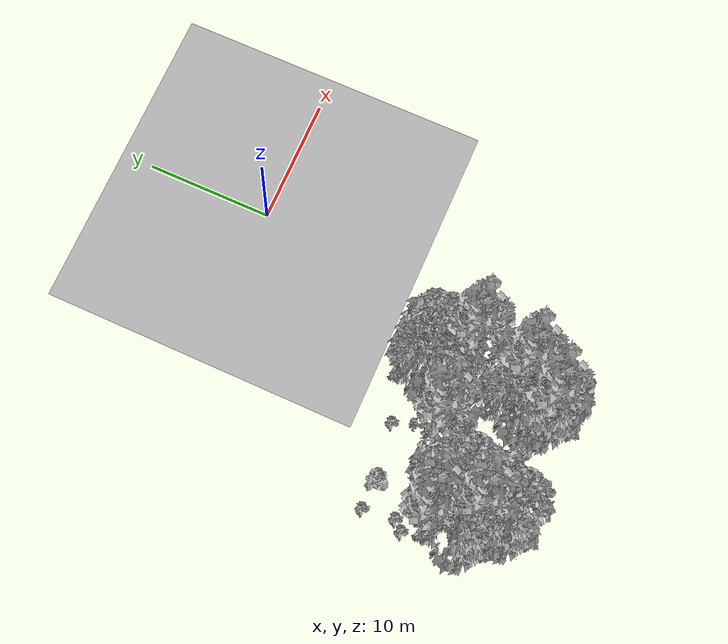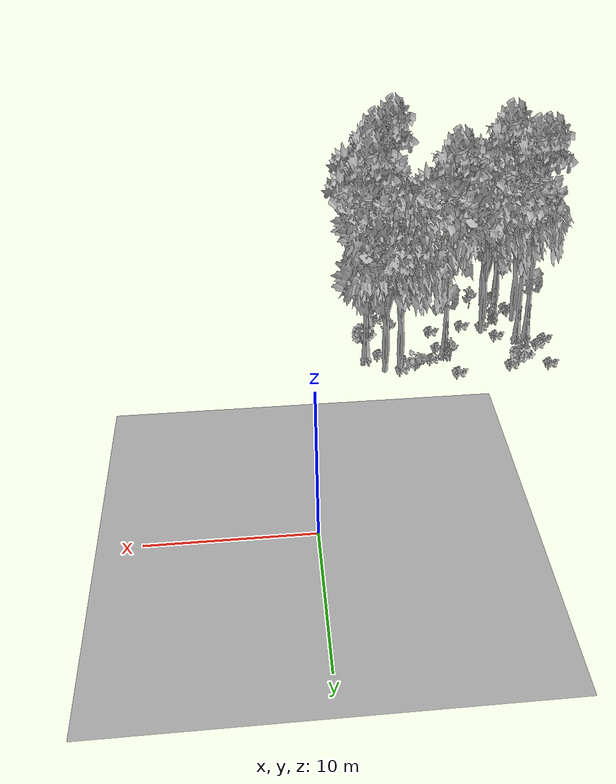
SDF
<sdf version="1.7">
 <world name="default">
  <model name="ground_plane">
   <static>1</static>
   <link name="link">
    <collision name="collision">
     <pose>-50 0 0 0 -0 0</pose>
     <geometry><plane><normal>0 0 1</normal><size>80 80</size></plane></geometry>
     <surface><contact><ode><min_depth>0.01</min_depth><max_vel>0</max_vel></ode></contact></surface>
    </collision>
    <visual name="grass">
     <cast_shadows>0</cast_shadows>
     <geometry>
      <mesh>
       <scale>0.46714285714285714 0.46714285714285714 0.1</scale>
       <uri>file://grass_plane/meshes/grass_plane.dae</uri>
      </mesh>
     </geometry>
    </visual>
   </link>
  </model>
  <model name="Tree 80">
   <static>1</static>
   <pose>-13.733407113999728 -20.463166102159917 0 1.57079 -0 0</pose>
   <link name="link">
    <collision name="collision">
     <geometry><mesh><scale>3.5 5 3.5</scale><uri>model://tree_2/meshes/tree_2.obj</uri></mesh></geometry>
    </collision>
    <visual name="visual">
     <geometry><mesh><scale>3.5 5 3.5</scale><uri>model://tree_2/meshes/tree_2.obj</uri></mesh></geometry>
    </visual>
   </link>
  </model>
  <model name="Tree 127">
   <static>1</static>
   <pose>-4.68467193456803 -18.030052959936597 0 1.57079 -0 0</pose>
   <link name="link">
    <collision name="collision">
     <geometry><mesh><scale>3.5 5 3.5</scale><uri>model://tree_9/meshes/tree_9.obj</uri></mesh></geometry>
    </collision>
    <visual name="visual">
     <geometry><mesh><scale>3.5 5 3.5</scale><uri>model://tree_9/meshes/tree_9.obj</uri></mesh></geometry>
    </visual>
   </link>
  </model>
  <model name="Tree 202">
   <static>1</static>
   <pose>-5.9260006562697995 -16.08295300320868 0 1.57079 -0 0</pose>
   <link name="link">
    <collision name="collision">
     <geometry><mesh><scale>3.5 5 3.5</scale><uri>model://tree_2/meshes/tree_2.obj</uri></mesh></geometry>
    </collision>
    <visual name="visual">
     <geometry><mesh><scale>3.5 5 3.5</scale><uri>model://tree_2/meshes/tree_2.obj</uri></mesh></geometry>
    </visual>
   </link>
  </model>
  <model name="Tree 301">
   <static>1</static>
   <pose>-6.976071896903822 -16.067900413745512 0 1.57079 -0 0</pose>
   <link name="link">
    <collision name="collision">
     <geometry><mesh><scale>3.5 5 3.5</scale><uri>model://tree_2/meshes/tree_2.obj</uri></mesh></geometry>
    </collision>
    <visual name="visual">
     <geometry><mesh><scale>3.5 5 3.5</scale><uri>model://tree_2/meshes/tree_2.obj</uri></mesh></geometry>
    </visual>
   </link>
  </model>
  <model name="Tree 302">
   <static>1</static>
   <pose>-15.026390082292696 -22.64314316348819 0 1.57079 -0 0</pose>
   <link name="link">
    <collision name="collision">
     <geometry><mesh><scale>3.5 5 3.5</scale><uri>model://tree_9/meshes/tree_9.obj</uri></mesh></geometry>
    </collision>
    <visual name="visual">
     <geometry><mesh><scale>3.5 5 3.5</scale><uri>model://tree_9/meshes/tree_9.obj</uri></mesh></geometry>
    </visual>
   </link>
  </model>
  <model name="Tree 306">
   <static>1</static>
   <pose>-15.131793845772428 -22.701720346680617 0 1.57079 -0 0</pose>
   <link name="link">
    <collision name="collision">
     <geometry><mesh><scale>3.5 5 3.5</scale><uri>model://tree_2/meshes/tree_2.obj</uri></mesh></geometry>
    </collision>
    <visual name="visual">
     <geometry><mesh><scale>3.5 5 3.5</scale><uri>model://tree_2/meshes/tree_2.obj</uri></mesh></geometry>
    </visual>
   </link>
  </model>
  <model name="Tree 366">
   <static>1</static>
   <pose>-10.466068834979662 -18.094548248473963 0 1.57079 -0 0</pose>
   <link name="link">
    <collision name="collision">
     <geometry><mesh><scale>3.5 5 3.5</scale><uri>model://tree_9/meshes/tree_9.obj</uri></mesh></geometry>
    </collision>
    <visual name="visual">
     <geometry><mesh><scale>3.5 5 3.5</scale><uri>model://tree_9/meshes/tree_9.obj</uri></mesh></geometry>
    </visual>
   </link>
  </model>
  <model name="Tree 367">
   <static>1</static>
   <pose>-6.5593822232438725 -24.212072718249384 0 1.57079 -0 0</pose>
   <link name="link">
    <collision name="collision">
     <geometry><mesh><scale>3.5 5 3.5</scale><uri>model://tree_2/meshes/tree_2.obj</uri></mesh></geometry>
    </collision>
    <visual name="visual">
     <geometry><mesh><scale>3.5 5 3.5</scale><uri>model://tree_2/meshes/tree_2.obj</uri></mesh></geometry>
    </visual>
   </link>
  </model>
  <model name="Tree 406">
   <static>1</static>
   <pose>-16.192806095188867 -19.68909180509055 0 1.57079 -0 0</pose>
   <link name="link">
    <collision name="collision">
     <geometry><mesh><scale>3.5 5 3.5</scale><uri>model://tree_9/meshes/tree_9.obj</uri></mesh></geometry>
    </collision>
    <visual name="visual">
     <geometry><mesh><scale>3.5 5 3.5</scale><uri>model://tree_9/meshes/tree_9.obj</uri></mesh></geometry>
    </visual>
   </link>
  </model>
  <model name="Tree 416">
   <static>1</static>
   <pose>-6.881785236045282 -22.58698716618821 0 1.57079 -0 0</pose>
   <link name="link">
    <collision name="collision">
     <geometry><mesh><scale>3.5 5 3.5</scale><uri>model://tree_2/meshes/tree_2.obj</uri></mesh></geometry>
    </collision>
    <visual name="visual">
     <geometry><mesh><scale>3.5 5 3.5</scale><uri>model://tree_2/meshes/tree_2.obj</uri></mesh></geometry>
    </visual>
   </link>
  </model>
  <model name="Tree 509">
   <static>1</static>
   <pose>-14.540099592670462 -24.368938266835684 0 1.57079 -0 0</pose>
   <link name="link">
    <collision name="collision">
     <geometry><mesh><scale>3.5 5 3.5</scale><uri>model://tree_2/meshes/tree_2.obj</uri></mesh></geometry>
    </collision>
    <visual name="visual">
     <geometry><mesh><scale>3.5 5 3.5</scale><uri>model://tree_2/meshes/tree_2.obj</uri></mesh></geometry>
    </visual>
   </link>
  </model>
  <model name="Tree 521">
   <static>1</static>
   <pose>-5.320970833933046 -22.073026065958203 0 1.57079 -0 0</pose>
   <link name="link">
    <collision name="collision">
     <geometry><mesh><scale>3.5 5 3.5</scale><uri>model://tree_9/meshes/tree_9.obj</uri></mesh></geometry>
    </collision>
    <visual name="visual">
     <geometry><mesh><scale>3.5 5 3.5</scale><uri>model://tree_9/meshes/tree_9.obj</uri></mesh></geometry>
    </visual>
   </link>
  </model>
  <model name="Tree 548">
   <static>1</static>
   <pose>-16.93138918999369 -19.855117583111543 0 1.57079 -0 0</pose>
   <link name="link">
    <collision name="collision">
     <geometry><mesh><scale>3.5 5 3.5</scale><uri>model://tree_9/meshes/tree_9.obj</uri></mesh></geometry>
    </collision>
    <visual name="visual">
     <geometry><mesh><scale>3.5 5 3.5</scale><uri>model://tree_9/meshes/tree_9.obj</uri></mesh></geometry>
    </visual>
   </link>
  </model>
  <model name="Tree 583">
   <static>1</static>
   <pose>-16.417527314023186 -21.92130678057742 0 1.57079 -0 0</pose>
   <link name="link">
    <collision name="collision">
     <geometry><mesh><scale>3.5 5 3.5</scale><uri>model://tree_2/meshes/tree_2.obj</uri></mesh></geometry>
    </collision>
    <visual name="visual">
     <geometry><mesh><scale>3.5 5 3.5</scale><uri>model://tree_2/meshes/tree_2.obj</uri></mesh></geometry>
    </visual>
   </link>
  </model>
  <model name="Tree 592">
   <static>1</static>
   <pose>-6.815218406411962 -24.449732599178766 0 1.57079 -0 0</pose>
   <link name="link">
    <collision name="collision">
     <geometry><mesh><scale>3.5 5 3.5</scale><uri>model://tree_9/meshes/tree_9.obj</uri></mesh></geometry>
    </collision>
    <visual name="visual">
     <geometry><mesh><scale>3.5 5 3.5</scale><uri>model://tree_9/meshes/tree_9.obj</uri></mesh></geometry>
    </visual>
   </link>
  </model>
  <model name="Bush 65">
   <static>1</static>
   <pose>-11.072555912220185 -15.304924657736407 0 1.57079 -0 0</pose>
   <link name="link">
    <collision name="collision">
     <geometry><mesh><scale>2 2 2</scale><uri>model://bush_2/meshes/bush_2.obj</uri></mesh></geometry>
     <surface><contact><collide_without_contact>false</collide_without_contact></contact></surface>
    </collision>
    <visual name="visual">
     <geometry><mesh><scale>2 2 2</scale><uri>model://bush_2/meshes/bush_2.obj</uri></mesh></geometry>
    </visual>
   </link>
  </model>
  <model name="Bush 83">
   <static>1</static>
   <pose>-16.405091074023154 -23.28300925070865 0 1.57079 -0 0</pose>
   <link name="link">
    <collision name="collision">
     <geometry><mesh><scale>2 2 2</scale><uri>model://bush_2/meshes/bush_2.obj</uri></mesh></geometry>
     <surface><contact><collide_without_contact>false</collide_without_contact></contact></surface>
    </collision>
    <visual name="visual">
     <geometry><mesh><scale>2 2 2</scale><uri>model://bush_2/meshes/bush_2.obj</uri></mesh></geometry>
    </visual>
   </link>
  </model>
  <model name="Bush 132">
   <static>1</static>
   <pose>-4.630431130121245 -19.844538467173756 0 1.57079 -0 0</pose>
   <link name="link">
    <collision name="collision">
     <geometry><mesh><scale>2 2 2</scale><uri>model://bush_1/meshes/bush_1.obj</uri></mesh></geometry>
     <surface><contact><collide_without_contact>false</collide_without_contact></contact></surface>
    </collision>
    <visual name="visual">
     <geometry><mesh><scale>2 2 2</scale><uri>model://bush_1/meshes/bush_1.obj</uri></mesh></geometry>
    </visual>
   </link>
  </model>
  <model name="Bush 150">
   <static>1</static>
   <pose>-6.034362808652482 -22.868105651026838 0 1.57079 -0 0</pose>
   <link name="link">
    <collision name="collision">
     <geometry><mesh><scale>2 2 2</scale><uri>model://bush_2/meshes/bush_2.obj</uri></mesh></geometry>
     <surface><contact><collide_without_contact>false</collide_without_contact></contact></surface>
    </collision>
    <visual name="visual">
     <geometry><mesh><scale>2 2 2</scale><uri>model://bush_2/meshes/bush_2.obj</uri></mesh></geometry>
    </visual>
   </link>
  </model>
  <model name="Bush 164">
   <static>1</static>
   <pose>-7.102617870290501 -16.060901873413272 0 1.57079 -0 0</pose>
   <link name="link">
    <collision name="collision">
     <geometry><mesh><scale>2 2 2</scale><uri>model://bush_2/meshes/bush_2.obj</uri></mesh></geometry>
     <surface><contact><collide_without_contact>false</collide_without_contact></contact></surface>
    </collision>
    <visual name="visual">
     <geometry><mesh><scale>2 2 2</scale><uri>model://bush_2/meshes/bush_2.obj</uri></mesh></geometry>
    </visual>
   </link>
  </model>
  <model name="Bush 167">
   <static>1</static>
   <pose>-11.004155942628383 -24.024744815959103 0 1.57079 -0 0</pose>
   <link name="link">
    <collision name="collision">
     <geometry><mesh><scale>2 2 2</scale><uri>model://bush_2/meshes/bush_2.obj</uri></mesh></geometry>
     <surface><contact><collide_without_contact>false</collide_without_contact></contact></surface>
    </collision>
    <visual name="visual">
     <geometry><mesh><scale>2 2 2</scale><uri>model://bush_2/meshes/bush_2.obj</uri></mesh></geometry>
    </visual>
   </link>
  </model>
  <model name="Bush 170">
   <static>1</static>
   <pose>-12.331095417544766 -21.415319067246983 0 1.57079 -0 0</pose>
   <link name="link">
    <collision name="collision">
     <geometry><mesh><scale>2 2 2</scale><uri>model://bush_2/meshes/bush_2.obj</uri></mesh></geometry>
     <surface><contact><collide_without_contact>false</collide_without_contact></contact></surface>
    </collision>
    <visual name="visual">
     <geometry><mesh><scale>2 2 2</scale><uri>model://bush_2/meshes/bush_2.obj</uri></mesh></geometry>
    </visual>
   </link>
  </model>
  <model name="Bush 173">
   <static>1</static>
   <pose>-18.152731761323082 -19.064361622608324 0 1.57079 -0 0</pose>
   <link name="link">
    <collision name="collision">
     <geometry><mesh><scale>2 2 2</scale><uri>model://bush_2/meshes/bush_2.obj</uri></mesh></geometry>
     <surface><contact><collide_without_contact>false</collide_without_contact></contact></surface>
    </collision>
    <visual name="visual">
     <geometry><mesh><scale>2 2 2</scale><uri>model://bush_2/meshes/bush_2.obj</uri></mesh></geometry>
    </visual>
   </link>
  </model>
  <model name="Bush 183">
   <static>1</static>
   <pose>-17.481144217084864 -18.350734748699836 0 1.57079 -0 0</pose>
   <link name="link">
    <collision name="collision">
     <geometry><mesh><scale>2 2 2</scale><uri>model://bush_2/meshes/bush_2.obj</uri></mesh></geometry>
     <surface><contact><collide_without_contact>false</collide_without_contact></contact></surface>
    </collision>
    <visual name="visual">
     <geometry><mesh><scale>2 2 2</scale><uri>model://bush_2/meshes/bush_2.obj</uri></mesh></geometry>
    </visual>
   </link>
  </model>
  <model name="Bush 193">
   <static>1</static>
   <pose>-9.43695108132276 -17.182769861236267 0 1.57079 -0 0</pose>
   <link name="link">
    <collision name="collision">
     <geometry><mesh><scale>2 2 2</scale><uri>model://bush_2/meshes/bush_2.obj</uri></mesh></geometry>
     <surface><contact><collide_without_contact>false</collide_without_contact></contact></surface>
    </collision>
    <visual name="visual">
     <geometry><mesh><scale>2 2 2</scale><uri>model://bush_2/meshes/bush_2.obj</uri></mesh></geometry>
    </visual>
   </link>
  </model>
  <model name="Bush 254">
   <static>1</static>
   <pose>-4.909530469880991 -20.608586716857012 0 1.57079 -0 0</pose>
   <link name="link">
    <collision name="collision">
     <geometry><mesh><scale>2 2 2</scale><uri>model://bush_2/meshes/bush_2.obj</uri></mesh></geometry>
     <surface><contact><collide_without_contact>false</collide_without_contact></contact></surface>
    </collision>
    <visual name="visual">
     <geometry><mesh><scale>2 2 2</scale><uri>model://bush_2/meshes/bush_2.obj</uri></mesh></geometry>
    </visual>
   </link>
  </model>
  <model name="Bush 256">
   <static>1</static>
   <pose>-14.678536982255189 -19.817227057594415 0 1.57079 -0 0</pose>
   <link name="link">
    <collision name="collision">
     <geometry><mesh><scale>2 2 2</scale><uri>model://bush_2/meshes/bush_2.obj</uri></mesh></geometry>
     <surface><contact><collide_without_contact>false</collide_without_contact></contact></surface>
    </collision>
    <visual name="visual">
     <geometry><mesh><scale>2 2 2</scale><uri>model://bush_2/meshes/bush_2.obj</uri></mesh></geometry>
    </visual>
   </link>
  </model>
  <model name="Bush 324">
   <static>1</static>
   <pose>-15.528761898253922 -25.422854588726054 0 1.57079 -0 0</pose>
   <link name="link">
    <collision name="collision">
     <geometry><mesh><scale>2 2 2</scale><uri>model://bush_2/meshes/bush_2.obj</uri></mesh></geometry>
     <surface><contact><collide_without_contact>false</collide_without_contact></contact></surface>
    </collision>
    <visual name="visual">
     <geometry><mesh><scale>2 2 2</scale><uri>model://bush_2/meshes/bush_2.obj</uri></mesh></geometry>
    </visual>
   </link>
  </model>
  <model name="Bush 338">
   <static>1</static>
   <pose>-13.36294251570203 -23.916740593007066 0 1.57079 -0 0</pose>
   <link name="link">
    <collision name="collision">
     <geometry><mesh><scale>2 2 2</scale><uri>model://bush_5/meshes/bush_5.obj</uri></mesh></geometry>
     <surface><contact><collide_without_contact>false</collide_without_contact></contact></surface>
    </collision>
    <visual name="visual">
     <geometry><mesh><scale>2 2 2</scale><uri>model://bush_5/meshes/bush_5.obj</uri></mesh></geometry>
    </visual>
   </link>
  </model>
  <model name="Bush 381">
   <static>1</static>
   <pose>-14.78758129125455 -22.142003410370073 0 1.57079 -0 0</pose>
   <link name="link">
    <collision name="collision">
     <geometry><mesh><scale>2 2 2</scale><uri>model://bush_4/meshes/bush_4.obj</uri></mesh></geometry>
     <surface><contact><collide_without_contact>false</collide_without_contact></contact></surface>
    </collision>
    <visual name="visual">
     <geometry><mesh><scale>2 2 2</scale><uri>model://bush_4/meshes/bush_4.obj</uri></mesh></geometry>
    </visual>
   </link>
  </model>
  <model name="Bush 394">
   <static>1</static>
   <pose>-7.435733551015012 -17.12769402140969 0 1.57079 -0 0</pose>
   <link name="link">
    <collision name="collision">
     <geometry><mesh><scale>2 2 2</scale><uri>model://bush_2/meshes/bush_2.obj</uri></mesh></geometry>
     <surface><contact><collide_without_contact>false</collide_without_contact></contact></surface>
    </collision>
    <visual name="visual">
     <geometry><mesh><scale>2 2 2</scale><uri>model://bush_2/meshes/bush_2.obj</uri></mesh></geometry>
    </visual>
   </link>
  </model>
  <model name="Bush 402">
   <static>1</static>
   <pose>-16.260442916927015 -23.74375012427331 0 1.57079 -0 0</pose>
   <link name="link">
    <collision name="collision">
     <geometry><mesh><scale>2 2 2</scale><uri>model://bush_2/meshes/bush_2.obj</uri></mesh></geometry>
     <surface><contact><collide_without_contact>false</collide_without_contact></contact></surface>
    </collision>
    <visual name="visual">
     <geometry><mesh><scale>2 2 2</scale><uri>model://bush_2/meshes/bush_2.obj</uri></mesh></geometry>
    </visual>
   </link>
  </model>
  <model name="Bush 405">
   <static>1</static>
   <pose>-6.57959519955152 -20.23775615477966 0 1.57079 -0 0</pose>
   <link name="link">
    <collision name="collision">
     <geometry><mesh><scale>2 2 2</scale><uri>model://bush_5/meshes/bush_5.obj</uri></mesh></geometry>
     <surface><contact><collide_without_contact>false</collide_without_contact></contact></surface>
    </collision>
    <visual name="visual">
     <geometry><mesh><scale>2 2 2</scale><uri>model://bush_5/meshes/bush_5.obj</uri></mesh></geometry>
    </visual>
   </link>
  </model>
  <model name="Bush 417">
   <static>1</static>
   <pose>-17.785224349145278 -15.820250055588403 0 1.57079 -0 0</pose>
   <link name="link">
    <collision name="collision">
     <geometry><mesh><scale>2 2 2</scale><uri>model://bush_2/meshes/bush_2.obj</uri></mesh></geometry>
     <surface><contact><collide_without_contact>false</collide_without_contact></contact></surface>
    </collision>
    <visual name="visual">
     <geometry><mesh><scale>2 2 2</scale><uri>model://bush_2/meshes/bush_2.obj</uri></mesh></geometry>
    </visual>
   </link>
  </model>
  <model name="Bush 433">
   <static>1</static>
   <pose>-10.619842223502811 -16.809911152748285 0 1.57079 -0 0</pose>
   <link name="link">
    <collision name="collision">
     <geometry><mesh><scale>2 2 2</scale><uri>model://bush_5/meshes/bush_5.obj</uri></mesh></geometry>
     <surface><contact><collide_without_contact>false</collide_without_contact></contact></surface>
    </collision>
    <visual name="visual">
     <geometry><mesh><scale>2 2 2</scale><uri>model://bush_5/meshes/bush_5.obj</uri></mesh></geometry>
    </visual>
   </link>
  </model>
  <model name="Bush 495">
   <static>1</static>
   <pose>-9.200505836727242 -24.80386770204983 0 1.57079 -0 0</pose>
   <link name="link">
    <collision name="collision">
     <geometry><mesh><scale>2 2 2</scale><uri>model://bush_1/meshes/bush_1.obj</uri></mesh></geometry>
     <surface><contact><collide_without_contact>false</collide_without_contact></contact></surface>
    </collision>
    <visual name="visual">
     <geometry><mesh><scale>2 2 2</scale><uri>model://bush_1/meshes/bush_1.obj</uri></mesh></geometry>
    </visual>
   </link>
  </model>
  <model name="Bush 530">
   <static>1</static>
   <pose>-15.007968363093376 -15.924396796122949 0 1.57079 -0 0</pose>
   <link name="link">
    <collision name="collision">
     <geometry><mesh><scale>2 2 2</scale><uri>model://bush_2/meshes/bush_2.obj</uri></mesh></geometry>
     <surface><contact><collide_without_contact>false</collide_without_contact></contact></surface>
    </collision>
    <visual name="visual">
     <geometry><mesh><scale>2 2 2</scale><uri>model://bush_2/meshes/bush_2.obj</uri></mesh></geometry>
    </visual>
   </link>
  </model>
  <model name="Bush 539">
   <static>1</static>
   <pose>-7.984363377474157 -15.836922725032217 0 1.57079 -0 0</pose>
   <link name="link">
    <collision name="collision">
     <geometry><mesh><scale>2 2 2</scale><uri>model://bush_0/meshes/bush_0.obj</uri></mesh></geometry>
     <surface><contact><collide_without_contact>false</collide_without_contact></contact></surface>
    </collision>
    <visual name="visual">
     <geometry><mesh><scale>2 2 2</scale><uri>model://bush_0/meshes/bush_0.obj</uri></mesh></geometry>
    </visual>
   </link>
  </model>
  <model name="Bush 551">
   <static>1</static>
   <pose>-13.86866752759413 -21.190560435943382 0 1.57079 -0 0</pose>
   <link name="link">
    <collision name="collision">
     <geometry><mesh><scale>2 2 2</scale><uri>model://bush_2/meshes/bush_2.obj</uri></mesh></geometry>
     <surface><contact><collide_without_contact>false</collide_without_contact></contact></surface>
    </collision>
    <visual name="visual">
     <geometry><mesh><scale>2 2 2</scale><uri>model://bush_2/meshes/bush_2.obj</uri></mesh></geometry>
    </visual>
   </link>
  </model>
  <model name="Bush 557">
   <static>1</static>
   <pose>-15.561702939219263 -16.0875999860248 0 1.57079 -0 0</pose>
   <link name="link">
    <collision name="collision">
     <geometry><mesh><scale>2 2 2</scale><uri>model://bush_1/meshes/bush_1.obj</uri></mesh></geometry>
     <surface><contact><collide_without_contact>false</collide_without_contact></contact></surface>
    </collision>
    <visual name="visual">
     <geometry><mesh><scale>2 2 2</scale><uri>model://bush_1/meshes/bush_1.obj</uri></mesh></geometry>
    </visual>
   </link>
  </model>
  <model name="Bush 564">
   <static>1</static>
   <pose>-9.889774343661927 -20.836928483300845 0 1.57079 -0 0</pose>
   <link name="link">
    <collision name="collision">
     <geometry><mesh><scale>2 2 2</scale><uri>model://bush_2/meshes/bush_2.obj</uri></mesh></geometry>
     <surface><contact><collide_without_contact>false</collide_without_contact></contact></surface>
    </collision>
    <visual name="visual">
     <geometry><mesh><scale>2 2 2</scale><uri>model://bush_2/meshes/bush_2.obj</uri></mesh></geometry>
    </visual>
   </link>
  </model>
  <model name="Bush 623">
   <static>1</static>
   <pose>-5.72411445403602 -18.086801699968582 0 1.57079 -0 0</pose>
   <link name="link">
    <collision name="collision">
     <geometry><mesh><scale>2 2 2</scale><uri>model://bush_2/meshes/bush_2.obj</uri></mesh></geometry>
     <surface><contact><collide_without_contact>false</collide_without_contact></contact></surface>
    </collision>
    <visual name="visual">
     <geometry><mesh><scale>2 2 2</scale><uri>model://bush_2/meshes/bush_2.obj</uri></mesh></geometry>
    </visual>
   </link>
  </model>
  <model name="Bush 624">
   <static>1</static>
   <pose>-10.071516542013828 -18.576568956154695 0 1.57079 -0 0</pose>
   <link name="link">
    <collision name="collision">
     <geometry><mesh><scale>2 2 2</scale><uri>model://bush_2/meshes/bush_2.obj</uri></mesh></geometry>
     <surface><contact><collide_without_contact>false</collide_without_contact></contact></surface>
    </collision>
    <visual name="visual">
     <geometry><mesh><scale>2 2 2</scale><uri>model://bush_2/meshes/bush_2.obj</uri></mesh></geometry>
    </visual>
   </link>
  </model>
  <model name="Bush 630">
   <static>1</static>
   <pose>-8.333982636556602 -25.34213069560547 0 1.57079 -0 0</pose>
   <link name="link">
    <collision name="collision">
     <geometry><mesh><scale>2 2 2</scale><uri>model://bush_1/meshes/bush_1.obj</uri></mesh></geometry>
     <surface><contact><collide_without_contact>false</collide_without_contact></contact></surface>
    </collision>
    <visual name="visual">
     <geometry><mesh><scale>2 2 2</scale><uri>model://bush_1/meshes/bush_1.obj</uri></mesh></geometry>
    </visual>
   </link>
  </model>
 </world>
</sdf>
